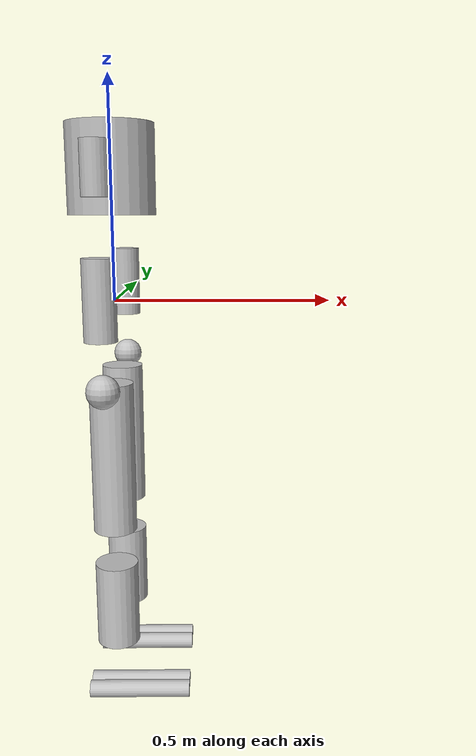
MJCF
<?xml version='1.0' encoding='utf-8'?>
<mujoco model="GR1T2">
  <compiler angle="radian" boundmass="1e-06" boundinertia="1e-08" meshdir=".." />
  <worldbody>
    <body name="base">
      <inertial pos="-0.048532 -0.00089322 -0.032851" quat="0.359122 0.355322 -0.61214 0.608327" mass="4.9859" diaginertia="0.0502243 0.0443404 0.0167704" />
      <joint type="free" />
      <body name="l_thigh_roll" pos="-0.048 0.105 -0.0575">
        <inertial pos="0.042108 5.3388e-05 0.0025561" quat="0.000951199 0.75733 0.00226652 0.653028" mass="1.24084" diaginertia="0.00139721 0.00109616 0.000971712" />
        <joint name="l_hip_roll" pos="0 0 0" axis="1 0 0" range="-0.09 0.79" actuatorfrcrange="-48 48" />
        <body name="l_thigh_yaw" pos="0.048 0 -0.0305">
          <inertial pos="-0.00036975 0.048008 -0.10263" quat="0.703435 0.0400874 -0.0739438 0.705766" mass="3.9947" diaginertia="0.0141906 0.00974878 0.00712104" />
          <joint name="l_hip_yaw" pos="0 0 0" axis="0 0 1" range="-0.7 0.7" actuatorfrcrange="-66 66" />
          <body name="l_thigh_pitch" pos="0 0 -0.11">
            <inertial pos="0.0023293 -0.018978 -0.09346" quat="0.709706 0.0401023 -0.0585618 0.700914" mass="6.1575" diaginertia="0.0860379 0.0814364 0.0141615" />
            <joint name="l_hip_pitch" pos="0 0 0" axis="0 1 0" range="-1.75 0.7" actuatorfrcrange="-225 225" />
            <geom size="0.05 0.175" pos="0 0 -0.15" type="cylinder" rgba="0.75294 0.75294 0.75294 1" />
            <body name="l_shank_pitch" pos="0 0 -0.359995">
              <inertial pos="0.0026504 0.0058504 -0.12267" quat="0.668844 0.0129955 -0.000303131 0.743289" mass="2.4196" diaginertia="0.0211876 0.0209532 0.00159024" />
              <joint name="l_knee_pitch" pos="0 0 0" axis="0 1 0" range="-0.09 1.92" actuatorfrcrange="-225 225" />
              <geom size="0.05 0.1" pos="0 0 -0.15" type="cylinder" rgba="0.75294 0.75294 0.75294 1" />
              <body name="l_foot_pitch" pos="0 0 -0.34">
                <inertial pos="-1.2374e-08 -1.3607e-08 0" quat="0.707107 0.707107 0 0" mass="0.049737" diaginertia="5.2e-06 4.41e-06 3.71e-06" />
                <joint name="l_ankle_pitch" pos="0 0 0" axis="0 1 0" range="-1.05 0.52" actuatorfrcrange="-15 15" />
                <body name="l_foot_roll">
                  <inertial pos="0.035077 0.00026914 -0.036774" quat="7.10825e-05 0.726356 -2.08931e-05 0.687319" mass="0.591221" diaginertia="0.00282255 0.00258496 0.000391055" />
                  <joint name="l_ankle_roll" pos="0 0 0" axis="1 0 0" range="-0.44 0.44" actuatorfrcrange="-30 30" />
                  <geom name="l_foot_1" size="0.02 0.12" pos="0.05 0.02 -0.035" quat="0.707105 0 0.707108 0" type="cylinder" rgba="0.75294 0.75294 0.75294 1" />
                  <geom name="l_foot_2" size="0.02 0.12" pos="0.05 -0.02 -0.035" quat="0.707105 0 0.707108 0" type="cylinder" rgba="0.75294 0.75294 0.75294 1" />
                </body>
              </body>
            </body>
          </body>
        </body>
      </body>
      <body name="r_thigh_roll" pos="-0.048 -0.105 -0.0575">
        <inertial pos="0.042109 -5.244e-05 0.0025563" quat="-0.000958227 0.757316 -0.00228287 0.653044" mass="1.2408" diaginertia="0.00139725 0.00109626 0.000971768" />
        <joint name="r_hip_roll" pos="0 0 0" axis="1 0 0" range="-0.79 0.09" actuatorfrcrange="-48 48" />
        <body name="r_thigh_yaw" pos="0.048 0 -0.0305">
          <inertial pos="-0.000369 -0.048008 -0.10263" quat="0.705764 -0.0739587 0.0400772 0.703435" mass="3.9947" diaginertia="0.0141904 0.00974868 0.00712096" />
          <joint name="r_hip_yaw" pos="0 0 0" axis="0 0 1" range="-0.7 0.7" actuatorfrcrange="-66 66" />
          <body name="r_thigh_pitch" pos="0 0 -0.11">
            <inertial pos="0.0023609 0.019072 -0.093254" quat="0.70026 -0.0586384 0.040433 0.710326" mass="6.1575" diaginertia="0.0861752 0.0815583 0.0142018" />
            <joint name="r_hip_pitch" pos="0 0 0" axis="0 1 0" range="-1.75 0.7" actuatorfrcrange="-225 225" />
            <geom size="0.05 0.175" pos="0 0 -0.15" type="cylinder" rgba="0.75294 0.75294 0.75294 1" />
            <body name="r_shank_pitch" pos="0 0 -0.359995">
              <inertial pos="0.0026636 -0.0058849 -0.12251" quat="0.742943 -0.000565827 0.013187 0.669224" mass="2.4196" diaginertia="0.0211282 0.0208909 0.00158776" />
              <joint name="r_knee_pitch" pos="0 0 0" axis="0 1 0" range="-0.09 1.92" actuatorfrcrange="-225 225" />
              <geom size="0.05 0.1" pos="0 0 -0.15" type="cylinder" rgba="0.75294 0.75294 0.75294 1" />
              <body name="r_foot_pitch" pos="0 0 -0.34">
                <inertial pos="-1.2374e-08 1.3607e-08 -2.1195e-10" quat="0.707107 0.707107 0 0" mass="0.049737" diaginertia="5.2e-06 4.41e-06 3.71e-06" />
                <joint name="r_ankle_pitch" pos="0 0 0" axis="0 1 0" range="-1.05 0.52" actuatorfrcrange="-15 15" />
                <body name="r_foot_roll">
                  <inertial pos="0.035078 -0.00026903 -0.036775" quat="-8.08951e-05 0.726358 2.37681e-05 0.687317" mass="0.59122" diaginertia="0.00282244 0.00258489 0.000391023" />
                  <joint name="r_ankle_roll" pos="0 0 0" axis="1 0 0" range="-0.44 0.44" actuatorfrcrange="-30 30" />
                  <geom name="r_foot_1" size="0.02 0.12" pos="0.05 0.02 -0.035" quat="0.707105 0 0.707108 0" type="cylinder" rgba="0.75294 0.75294 0.75294 1" />
                  <geom name="r_foot_2" size="0.02 0.12" pos="0.05 -0.02 -0.035" quat="0.707105 0 0.707108 0" type="cylinder" rgba="0.75294 0.75294 0.75294 1" />
                </body>
              </body>
            </body>
          </body>
        </body>
      </body>
      <body name="link_waist_yaw" pos="0 0 0.0065">
        <inertial pos="-0.0049526 -0.00090609 0.0262" quat="0.542631 0.529181 -0.457917 0.464576" mass="0.507438" diaginertia="0.00142661 0.00109837 0.000824081" />
        <joint name="joint_waist_yaw" pos="0 0 0" axis="0 0 1" range="-1.05 1.05" actuatorfrcrange="-66 66" />
        <body name="link_waist_pitch" pos="0 0 0.057">
          <inertial pos="0.0045612 -0.0044005 0.040369" quat="0.978202 -0.0539856 0.0371241 -0.197049" mass="2.90421" diaginertia="0.00850445 0.00848089 0.00320118" />
          <joint name="joint_waist_pitch" pos="0 0 0" axis="0 1 0" range="-0.52 1.22" actuatorfrcrange="-66 66" />
          <body name="link_waist_roll" pos="0 0 0.081">
            <inertial pos="-0.0094995 8.7428e-05 0.16729" quat="0.999359 -0.000385666 -0.035739 0.00217327" mass="7.54469" diaginertia="0.063061 0.0510142 0.0384047" />
            <joint name="joint_waist_roll" pos="0 0 0" axis="1 0 0" range="-0.7 0.7" actuatorfrcrange="-66 66" />
            <geom size="0.1 0.1" pos="0 0 0.15" type="cylinder" rgba="0.75294 0.75294 0.75294 1" />
            <body name="l_upper_arm_pitch" pos="0 0.126624 0.219259" quat="0.976296 0.216441 0 0">
              <inertial pos="0.0054188 0.05902 0.00011843" quat="0.719753 0.692726 -0.0305981 -0.0339146" mass="0.78809" diaginertia="0.00077767 0.000679926 0.000492134" />
              <joint name="l_shoulder_pitch" pos="0 0 0" axis="0 1 0" range="-2.79 1.92" actuatorfrcrange="-38 38" />
              <body name="l_upper_arm_roll" pos="0 0.067 0" quat="0.976296 -0.216441 0 0">
                <inertial pos="0.01986 0.02608 -0.025535" quat="0.893234 0.357735 0.271874 -0.0156034" mass="0.1786" diaginertia="0.00023545 0.000209436 9.26143e-05" />
                <joint name="l_shoulder_roll" pos="0 0 0" axis="1 0 0" range="-0.57 3.27" actuatorfrcrange="-38 38" />
                <body name="l_upper_arm_yaw" pos="0 0.0403814 -0.0572328">
                  <inertial pos="0.00010029 0.0012809 -0.097194" quat="0.999843 0.0176975 -0.000104318 -0.000563119" mass="0.98085" diaginertia="0.00618618 0.00611969 0.000570189" />
                  <joint name="l_shoulder_yaw" pos="0 0 0" axis="0 0 1" range="-2.97 2.97" actuatorfrcrange="-30 30" />
                  <geom size="0.03 0.055" pos="0 0 -0.05" type="cylinder" rgba="0.75294 0.75294 0.75294 1" />
                  <body name="l_lower_arm_pitch" pos="0 0.00125501 -0.188749">
                    <inertial pos="7.6884e-09 0.020584 -0.020113" quat="0.676835 -0.204682 0.204682 0.676835" mass="0.059535" diaginertia="3.12523e-05 2.796e-05 1.40177e-05" />
                    <joint name="l_elbow_pitch" pos="0 0 0" axis="0 1 0" range="-2.27 2.27" actuatorfrcrange="-30 30" />
                    <body name="l_hand_yaw" pos="0 0.000299612 -0.0404989">
                      <inertial pos="-0.00048885 0.0013916 -0.08204" quat="0.99956 -0.00194832 -2.05965e-05 0.0296028" mass="1.2684" diaginertia="0.00419493 0.00409086 0.000847261" />
                      <joint name="l_wrist_yaw" pos="0 0 0" axis="0 0 1" range="-2.97 2.97" actuatorfrcrange="-10.2 10.2" />
                      <geom size="0.035 0.085" pos="0 0 -0.08" type="cylinder" rgba="0.75294 0.75294 0.75294 1" />
                      <body name="l_hand_roll" pos="0 0.001337 -0.20108">
                        <inertial pos="1.566e-08 -0.00043791 -2.922e-06" quat="0.5 0.5 0.5 0.5" mass="0.0054351" diaginertia="3.6e-07 3.6e-07 7e-08" />
                        <joint name="l_wrist_roll" pos="0 0 0" axis="1 0 0" range="-0.96 0.87" actuatorfrcrange="-3.95 3.95" />
                        <body name="l_hand_pitch">
                          <inertial pos="0.0058876 -0.0010755 -0.082238" quat="0.813153 0.040279 0.00796725 0.580599" mass="0.54891" diaginertia="0.00152687 0.00108682 0.000582753" />
                          <joint name="l_wrist_pitch" pos="0 0 0" axis="0 1 0" range="-0.61 0.61" actuatorfrcrange="-3.95 3.95" />
                          <geom size="0.036" pos="0 0 -0.07" rgba="0.75294 0.75294 0.75294 1" />
                        </body>
                      </body>
                    </body>
                  </body>
                </body>
              </body>
            </body>
            <body name="r_upper_arm_pitch" pos="0 -0.126624 0.219259" quat="0.976296 -0.21644 0 0">
              <inertial pos="0.0054189 -0.058978 0.0001189" quat="0.688371 0.723998 0.033838 0.0287698" mass="0.78809" diaginertia="0.000777007 0.000679609 0.000492064" />
              <joint name="r_shoulder_pitch" pos="0 0 0" axis="0 1 0" range="-2.79 1.92" actuatorfrcrange="-38 38" />
              <body name="r_upper_arm_roll" pos="0 -0.067 0" quat="0.976296 0.21644 0 0">
                <inertial pos="0.019868 -0.025881 -0.025684" quat="0.89443 -0.354722 0.271831 0.0165736" mass="0.1786" diaginertia="0.000235434 0.000209404 9.26224e-05" />
                <joint name="r_shoulder_roll" pos="0 0 0" axis="1 0 0" range="-3.27 0.57" actuatorfrcrange="-38 38" />
                <body name="r_upper_arm_yaw" pos="0 -0.04 -0.0575">
                  <inertial pos="-0.00010032 -0.00063501 -0.097127" quat="0.999896 -0.0143971 0.000111836 0.000334005" mass="0.98085" diaginertia="0.0061732 0.00610683 0.00057023" />
                  <joint name="r_shoulder_yaw" pos="0 0 0" axis="0 0 1" range="-2.97 2.97" actuatorfrcrange="-30 30" />
                  <geom size="0.03 0.055" pos="0 0 -0.05" type="cylinder" rgba="0.75294 0.75294 0.75294 1" />
                  <body name="r_lower_arm_pitch" pos="0 0 -0.18853">
                    <inertial pos="-7.6455e-09 -0.020449 -0.020249" quat="0.676142 0.20696 -0.20696 0.676142" mass="0.059535" diaginertia="3.12637e-05 2.796e-05 1.40163e-05" />
                    <joint name="r_elbow_pitch" pos="0 0 0" axis="0 1 0" range="-2.27 2.27" actuatorfrcrange="-30 30" />
                    <body name="r_hand_yaw" pos="0 -3.03303e-05 -0.0405">
                      <inertial pos="0.00048881 -0.00084627 -0.082047" quat="0.999548 0.00527184 -7.7624e-05 0.0295879" mass="1.2684" diaginertia="0.00419493 0.00409087 0.000847259" />
                      <joint name="r_wrist_yaw" pos="0 0 0" axis="0 0 1" range="-2.97 2.97" actuatorfrcrange="-10.2 10.2" />
                      <geom size="0.035 0.085" pos="0 0 -0.08" type="cylinder" rgba="0.75294 0.75294 0.75294 1" />
                      <body name="r_hand_roll" pos="0 0 -0.201084">
                        <inertial pos="-1.552e-08 0.00043792 -1.1275e-08" quat="0.5 0.5 0.5 0.5" mass="0.0054351" diaginertia="3.6e-07 3.6e-07 7e-08" />
                        <joint name="r_wrist_roll" pos="0 0 0" axis="1 0 0" range="-0.87 0.96" actuatorfrcrange="-3.95 3.95" />
                        <body name="r_hand_pitch">
                          <inertial pos="0.0058875 0.0016218 -0.082229" quat="0.580588 0.0098997 0.0375703 0.81327" mass="0.54891" diaginertia="0.00152691 0.00108681 0.000582768" />
                          <joint name="r_wrist_pitch" pos="0 0 0" axis="0 1 0" range="-0.61 0.61" actuatorfrcrange="-3.95 3.95" />
                          <geom size="0.036" pos="0 0 -0.07" rgba="0.75294 0.75294 0.75294 1" />
                        </body>
                      </body>
                    </body>
                  </body>
                </body>
              </body>
            </body>
            <body name="link_head_pitch" pos="0.001 -0.000225513 0.305">
              <inertial pos="0.00043792 1.5503e-08 -1.1298e-08" quat="0.707107 0.707107 0 0" mass="0.00543512" diaginertia="3.6e-07 3.6e-07 7e-08" />
              <joint name="joint_head_pitch" pos="0 0 0" axis="0 1 0" range="-0.87 0.87" actuatorfrcrange="-3.95 3.95" />
              <body name="link_head_roll">
                <inertial pos="-0.003976 2.2544e-05 0.015347" quat="0.669576 0.669576 0.227306 -0.227306" mass="0.0713171" diaginertia="3.07787e-05 2.49813e-05 2.039e-05" />
                <joint name="joint_head_roll" pos="0 0 0" axis="1 0 0" range="-0.35 0.35" actuatorfrcrange="-3.95 3.95" />
                <body name="link_head_yaw" pos="0 5.373e-05 0.036">
                  <inertial pos="0.02323 0.00026918 0.11024" quat="0.694627 -0.130794 -0.130531 0.695232" mass="1.38984" diaginertia="0.00988205 0.00835953 0.00593029" />
                  <joint name="joint_head_yaw" pos="0 0 0" axis="0 0 1" range="-2.71 2.71" actuatorfrcrange="-3.95 3.95" />
                </body>
              </body>
            </body>
          </body>
        </body>
      </body>
    </body>
  </worldbody>
</mujoco>
